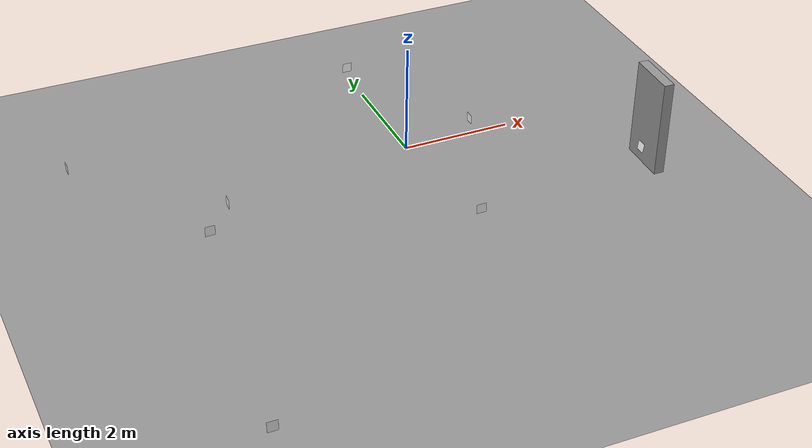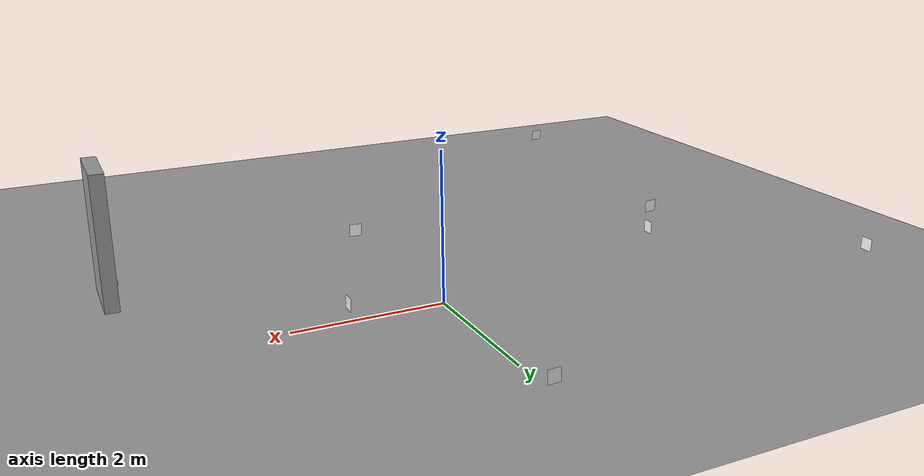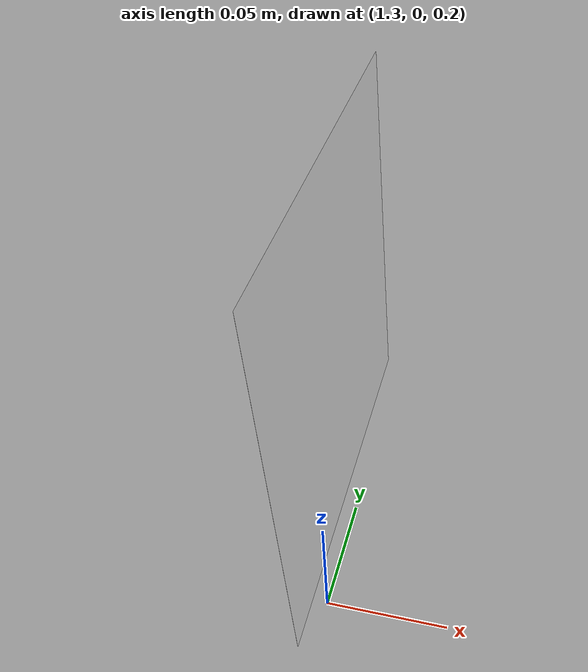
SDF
<sdf version="1.6">
 <world name="default">
  <light name="sun" type="directional">
   <pose>0 0 10 0 -0 0</pose>
   <diffuse>0.8 0.8 0.8 1</diffuse>
   <specular>0.2 0.2 0.2 1</specular>
   <attenuation>
    <range>1000</range>
    <constant>0.9</constant>
    <linear>0.01</linear>
    <quadratic>0.001</quadratic>
   </attenuation>
   <direction>0.5 0.1 -0.9</direction>
  </light>
  <scene><ambient>0.4 0.4 0.4 1</ambient><background>0.7 0.7 0.7 1</background><shadows>1</shadows></scene>
  <physics name="default_physics" default="0" type="ode">
   <max_step_size>0.01</max_step_size>
   <real_time_factor>1</real_time_factor>
   <real_time_update_rate>100</real_time_update_rate>
  </physics>
  <model name="ground_plane_0">
   <static>1</static>
   <link name="link">
    <collision name="collision">
     <geometry><plane><normal>0 0 1</normal><size>100 100</size></plane></geometry>
     <surface><friction><ode><mu>100</mu><mu2>50</mu2></ode></friction></surface>
    </collision>
    <visual name="visual">
     <cast_shadows>0</cast_shadows>
     <geometry><plane><normal>0 0 1</normal><size>100 100</size></plane></geometry>
     <material>
      <script><uri>file://media/materials/scripts/gazebo.material</uri><name>Gazebo/Grey</name></script>
     </material>
    </visual>
    <velocity_decay><linear>0</linear><angular>0</angular></velocity_decay>
   </link>
   <pose>0.497681 0 0 0 -0 0</pose>
  </model>
  <gravity>0 0 -9.8</gravity>
  <magnetic_field>6e-06 2.3e-05 -4.2e-05</magnetic_field>
  <atmosphere type="adiabatic"/>
  <spherical_coordinates>
   <surface_model>EARTH_WGS84</surface_model>
   <latitude_deg>0</latitude_deg>
   <longitude_deg>0</longitude_deg>
   <elevation>0</elevation>
   <heading_deg>0</heading_deg>
  </spherical_coordinates>
  <model name="aruco_visual_marker_0">
   <link name="marker">
    <visual name="visual">
     <geometry><box><size>0.1778 0.1778 1e-05</size></box></geometry>
     <material>
      <script>
       <uri>model://aruco_visual_marker_0/materials/scripts</uri>
       <uri>model://aruco_visual_marker_0/materials/textures</uri>
       <name>ArucoVisualMarker0/Marker</name>
      </script>
      <ambient>1 1 1 1</ambient>
      <diffuse>1 1 1 1</diffuse>
      <specular>0 0 0 1</specular>
      <emissive>1 1 1 0</emissive>
      <shader type="vertex"><normal_map>__default__</normal_map></shader>
     </material>
    </visual>
    <collision name="collision"><geometry><box><size>0.1778 0.1778 1e-05</size></box></geometry></collision>
   </link>
   <link name="marker_pad">
    <pose frame="marker">0 0 -1e-05 0 -0 0</pose>
    <visual name="visual">
     <geometry><box><size>0.1778 0.1778 1e-05</size></box></geometry>
     <material>
      <lighting>1</lighting>
      <script><uri>file://media/materials/scripts/gazebo.material</uri><name>Gazebo/White</name></script>
      <ambient>0.3 0.3 0.3 1</ambient>
      <diffuse>0.7 0.7 0.7 1</diffuse>
      <specular>0.01 0.01 0.01 1</specular>
      <emissive>1 1 1 0</emissive>
      <shader type="vertex"><normal_map>__default__</normal_map></shader>
     </material>
    </visual>
    <collision name="collision"><geometry><box><size>0.1778 0.1778 1e-05</size></box></geometry></collision>
   </link>
   <joint name="marker_JOINT_marker_pad" type="revolute">
    <parent>marker</parent>
    <child>marker_pad</child>
    <axis>
     <xyz>0 0 1</xyz>
     <limit><upper>0</upper><lower>0</lower></limit>
     <use_parent_model_frame>0</use_parent_model_frame>
     <dynamics><spring_reference>0</spring_reference><spring_stiffness>0</spring_stiffness></dynamics>
    </axis>
   </joint>
   <static>1</static>
   <pose>1.28765 0.072859 0.278322 3.14159 -1.52986 3.14159</pose>
  </model>
  <model name="aruco_visual_marker_1">
   <link name="marker">
    <visual name="visual">
     <geometry><box><size>0.1778 0.1778 1e-05</size></box></geometry>
     <material>
      <script>
       <uri>model://aruco_visual_marker_1/materials/scripts</uri>
       <uri>model://aruco_visual_marker_1/materials/textures</uri>
       <name>ArucoVisualMarker1/Marker</name>
      </script>
      <ambient>1 1 1 1</ambient>
      <diffuse>1 1 1 1</diffuse>
      <specular>0 0 0 1</specular>
      <emissive>1 1 1 0</emissive>
      <shader type="vertex"><normal_map>__default__</normal_map></shader>
     </material>
    </visual>
    <collision name="collision"><geometry><box><size>0.1778 0.1778 1e-05</size></box></geometry></collision>
   </link>
   <link name="marker_pad">
    <pose frame="marker">0 0 -1e-05 0 -0 0</pose>
    <visual name="visual">
     <geometry><box><size>0.1778 0.1778 1e-05</size></box></geometry>
     <material>
      <lighting>1</lighting>
      <script><uri>file://media/materials/scripts/gazebo.material</uri><name>Gazebo/White</name></script>
      <ambient>0.3 0.3 0.3 1</ambient>
      <diffuse>0.7 0.7 0.7 1</diffuse>
      <specular>0.01 0.01 0.01 1</specular>
      <emissive>1 1 1 0</emissive>
      <shader type="vertex"><normal_map>__default__</normal_map></shader>
     </material>
    </visual>
    <collision name="collision"><geometry><box><size>0.1778 0.1778 1e-05</size></box></geometry></collision>
   </link>
   <joint name="marker_JOINT_marker_pad" type="revolute">
    <parent>marker</parent>
    <child>marker_pad</child>
    <axis>
     <xyz>0 0 1</xyz>
     <limit><upper>0</upper><lower>0</lower></limit>
     <use_parent_model_frame>0</use_parent_model_frame>
     <dynamics><spring_reference>0</spring_reference><spring_stiffness>0</spring_stiffness></dynamics>
    </axis>
   </joint>
   <static>1</static>
   <pose>-0.010006 2.74386 0.206265 1.67097 -1.54756 -0.042511</pose>
  </model>
  <model name="aruco_visual_marker_2">
   <link name="marker">
    <visual name="visual">
     <geometry><box><size>0.1778 0.1778 1e-05</size></box></geometry>
     <material>
      <script>
       <uri>model://aruco_visual_marker_2/materials/scripts</uri>
       <uri>model://aruco_visual_marker_2/materials/textures</uri>
       <name>ArucoVisualMarker2/Marker</name>
      </script>
      <ambient>1 1 1 1</ambient>
      <diffuse>1 1 1 1</diffuse>
      <specular>0 0 0 1</specular>
      <emissive>1 1 1 0</emissive>
      <shader type="vertex"><normal_map>__default__</normal_map></shader>
     </material>
    </visual>
    <collision name="collision"><geometry><box><size>0.1778 0.1778 1e-05</size></box></geometry></collision>
   </link>
   <link name="marker_pad">
    <pose frame="marker">0 0 -1e-05 0 -0 0</pose>
    <visual name="visual">
     <geometry><box><size>0.1778 0.1778 1e-05</size></box></geometry>
     <material>
      <lighting>1</lighting>
      <script><uri>file://media/materials/scripts/gazebo.material</uri><name>Gazebo/White</name></script>
      <ambient>0.3 0.3 0.3 1</ambient>
      <diffuse>0.7 0.7 0.7 1</diffuse>
      <specular>0.01 0.01 0.01 1</specular>
      <emissive>1 1 1 0</emissive>
      <shader type="vertex"><normal_map>__default__</normal_map></shader>
     </material>
    </visual>
    <collision name="collision"><geometry><box><size>0.1778 0.1778 1e-05</size></box></geometry></collision>
   </link>
   <joint name="marker_JOINT_marker_pad" type="revolute">
    <parent>marker</parent>
    <child>marker_pad</child>
    <axis>
     <xyz>0 0 1</xyz>
     <limit><upper>0</upper><lower>0</lower></limit>
     <use_parent_model_frame>0</use_parent_model_frame>
     <dynamics><spring_reference>0</spring_reference><spring_stiffness>0</spring_stiffness></dynamics>
    </axis>
   </joint>
   <static>1</static>
   <pose>0.237944 -2.53472 0.247689 1.56817 -1.53942 -3.1407</pose>
  </model>
  <model name="aruco_visual_marker_3">
   <link name="marker">
    <visual name="visual">
     <geometry><box><size>0.1778 0.1778 1e-05</size></box></geometry>
     <material>
      <script>
       <uri>model://aruco_visual_marker_3/materials/scripts</uri>
       <uri>model://aruco_visual_marker_3/materials/textures</uri>
       <name>ArucoVisualMarker3/Marker</name>
      </script>
      <ambient>1 1 1 1</ambient>
      <diffuse>1 1 1 1</diffuse>
      <specular>0 0 0 1</specular>
      <emissive>1 1 1 0</emissive>
      <shader type="vertex"><normal_map>__default__</normal_map></shader>
     </material>
    </visual>
    <collision name="collision"><geometry><box><size>0.1778 0.1778 1e-05</size></box></geometry></collision>
   </link>
   <link name="marker_pad">
    <pose frame="marker">0 0 -1e-05 0 -0 0</pose>
    <visual name="visual">
     <geometry><box><size>0.1778 0.1778 1e-05</size></box></geometry>
     <material>
      <lighting>1</lighting>
      <script><uri>file://media/materials/scripts/gazebo.material</uri><name>Gazebo/White</name></script>
      <ambient>0.3 0.3 0.3 1</ambient>
      <diffuse>0.7 0.7 0.7 1</diffuse>
      <specular>0.01 0.01 0.01 1</specular>
      <emissive>1 1 1 0</emissive>
      <shader type="vertex"><normal_map>__default__</normal_map></shader>
     </material>
    </visual>
    <collision name="collision"><geometry><box><size>0.1778 0.1778 1e-05</size></box></geometry></collision>
   </link>
   <joint name="marker_JOINT_marker_pad" type="revolute">
    <parent>marker</parent>
    <child>marker_pad</child>
    <axis>
     <xyz>0 0 1</xyz>
     <limit><upper>0</upper><lower>0</lower></limit>
     <use_parent_model_frame>0</use_parent_model_frame>
     <dynamics><spring_reference>0</spring_reference><spring_stiffness>0</spring_stiffness></dynamics>
    </axis>
   </joint>
   <static>1</static>
   <pose>-3.61678 -0.708729 0.251791 0.078615 -1.56846 3.02331</pose>
  </model>
  <model name="aruco_visual_marker_5">
   <link name="marker">
    <visual name="visual">
     <geometry><box><size>0.1778 0.1778 1e-05</size></box></geometry>
     <material>
      <script>
       <uri>model://aruco_visual_marker_5/materials/scripts</uri>
       <uri>model://aruco_visual_marker_5/materials/textures</uri>
       <name>ArucoVisualMarker5/Marker</name>
      </script>
      <ambient>1 1 1 1</ambient>
      <diffuse>1 1 1 1</diffuse>
      <specular>0 0 0 1</specular>
      <emissive>1 1 1 0</emissive>
      <shader type="vertex"><normal_map>__default__</normal_map></shader>
     </material>
    </visual>
    <collision name="collision"><geometry><box><size>0.1778 0.1778 1e-05</size></box></geometry></collision>
   </link>
   <link name="marker_pad">
    <pose frame="marker">0 0 -1e-05 0 -0 0</pose>
    <visual name="visual">
     <geometry><box><size>0.1778 0.1778 1e-05</size></box></geometry>
     <material>
      <lighting>1</lighting>
      <script><uri>file://media/materials/scripts/gazebo.material</uri><name>Gazebo/White</name></script>
      <ambient>0.3 0.3 0.3 1</ambient>
      <diffuse>0.7 0.7 0.7 1</diffuse>
      <specular>0.01 0.01 0.01 1</specular>
      <emissive>1 1 1 0</emissive>
      <shader type="vertex"><normal_map>__default__</normal_map></shader>
     </material>
    </visual>
    <collision name="collision"><geometry><box><size>0.1778 0.1778 1e-05</size></box></geometry></collision>
   </link>
   <joint name="marker_JOINT_marker_pad" type="revolute">
    <parent>marker</parent>
    <child>marker_pad</child>
    <axis>
     <xyz>0 0 1</xyz>
     <limit><upper>0</upper><lower>0</lower></limit>
     <use_parent_model_frame>0</use_parent_model_frame>
     <dynamics><spring_reference>0</spring_reference><spring_stiffness>0</spring_stiffness></dynamics>
    </axis>
   </joint>
   <static>1</static>
   <pose>-4.16675 -1.4287 0.291247 -3.11073 -1.52026 1.5719</pose>
  </model>
  <model name="aruco_visual_marker_6">
   <link name="marker">
    <visual name="visual">
     <geometry><box><size>0.1778 0.1778 1e-05</size></box></geometry>
     <material>
      <script>
       <uri>model://aruco_visual_marker_6/materials/scripts</uri>
       <uri>model://aruco_visual_marker_6/materials/textures</uri>
       <name>ArucoVisualMarker6/Marker</name>
      </script>
      <ambient>1 1 1 1</ambient>
      <diffuse>1 1 1 1</diffuse>
      <specular>0 0 0 1</specular>
      <emissive>1 1 1 0</emissive>
      <shader type="vertex"><normal_map>__default__</normal_map></shader>
     </material>
    </visual>
    <collision name="collision"><geometry><box><size>0.1778 0.1778 1e-05</size></box></geometry></collision>
   </link>
   <link name="marker_pad">
    <pose frame="marker">0 0 -1e-05 0 -0 0</pose>
    <visual name="visual">
     <geometry><box><size>0.1778 0.1778 1e-05</size></box></geometry>
     <material>
      <lighting>1</lighting>
      <script><uri>file://media/materials/scripts/gazebo.material</uri><name>Gazebo/White</name></script>
      <ambient>0.3 0.3 0.3 1</ambient>
      <diffuse>0.7 0.7 0.7 1</diffuse>
      <specular>0.01 0.01 0.01 1</specular>
      <emissive>1 1 1 0</emissive>
      <shader type="vertex"><normal_map>__default__</normal_map></shader>
     </material>
    </visual>
    <collision name="collision"><geometry><box><size>0.1778 0.1778 1e-05</size></box></geometry></collision>
   </link>
   <joint name="marker_JOINT_marker_pad" type="revolute">
    <parent>marker</parent>
    <child>marker_pad</child>
    <axis>
     <xyz>0 0 1</xyz>
     <limit><upper>0</upper><lower>0</lower></limit>
     <use_parent_model_frame>0</use_parent_model_frame>
     <dynamics><spring_reference>0</spring_reference><spring_stiffness>0</spring_stiffness></dynamics>
    </axis>
   </joint>
   <static>1</static>
   <pose>-4.85402 -6.21626 0.300666 3.14159 -1.46545 1.57729</pose>
  </model>
  <model name="unit_box_0">
   <pose>3.75877 -2.03239 0.891027 -1e-06 2.7e-05 -0.027357</pose>
   <link name="link">
    <inertial>
     <mass>1</mass>
     <inertia>
      <ixx>0.166667</ixx>
      <ixy>0</ixy>
      <ixz>0</ixz>
      <iyy>0.166667</iyy>
      <iyz>0</iyz>
      <izz>0.166667</izz>
     </inertia>
    </inertial>
    <collision name="collision"><geometry><box><size>0.186255 0.88532 1.78381</size></box></geometry></collision>
    <visual name="visual">
     <geometry><box><size>0.186255 0.88532 1.78381</size></box></geometry>
     <material>
      <script><name>Gazebo/Grey</name><uri>file://media/materials/scripts/gazebo.material</uri></script>
     </material>
    </visual>
   </link>
  </model>
  <model name="aruco_visual_marker_7">
   <link name="marker">
    <visual name="visual">
     <geometry><box><size>0.1778 0.1778 1e-05</size></box></geometry>
     <material>
      <script>
       <uri>model://aruco_visual_marker_7/materials/scripts</uri>
       <uri>model://aruco_visual_marker_7/materials/textures</uri>
       <name>ArucoVisualMarker7/Marker</name>
      </script>
      <ambient>1 1 1 1</ambient>
      <diffuse>1 1 1 1</diffuse>
      <specular>0 0 0 1</specular>
      <emissive>1 1 1 0</emissive>
      <shader type="vertex"><normal_map>__default__</normal_map></shader>
     </material>
    </visual>
    <collision name="collision"><geometry><box><size>0.1778 0.1778 1e-05</size></box></geometry></collision>
   </link>
   <link name="marker_pad">
    <pose frame="marker">0 0 -1e-05 0 -0 0</pose>
    <visual name="visual">
     <geometry><box><size>0.1778 0.1778 1e-05</size></box></geometry>
     <material>
      <lighting>1</lighting>
      <script><uri>file://media/materials/scripts/gazebo.material</uri><name>Gazebo/White</name></script>
      <ambient>0.3 0.3 0.3 1</ambient>
      <diffuse>0.7 0.7 0.7 1</diffuse>
      <specular>0.01 0.01 0.01 1</specular>
      <emissive>1 1 1 0</emissive>
      <shader type="vertex"><normal_map>__default__</normal_map></shader>
     </material>
    </visual>
    <collision name="collision"><geometry><box><size>0.1778 0.1778 1e-05</size></box></geometry></collision>
   </link>
   <joint name="marker_JOINT_marker_pad" type="revolute">
    <parent>marker</parent>
    <child>marker_pad</child>
    <axis>
     <xyz>0 0 1</xyz>
     <limit><upper>0</upper><lower>0</lower></limit>
     <use_parent_model_frame>0</use_parent_model_frame>
     <dynamics><spring_reference>0</spring_reference><spring_stiffness>0</spring_stiffness></dynamics>
    </axis>
   </joint>
   <static>1</static>
   <pose>3.63792 -1.99964 0.296951 0 -1.4451 0</pose>
  </model>
  <model name="aruco_visual_marker_4_0">
   <link name="marker">
    <visual name="visual">
     <geometry><box><size>0.1778 0.1778 1e-05</size></box></geometry>
     <material>
      <script>
       <uri>model://aruco_visual_marker_4/materials/scripts</uri>
       <uri>model://aruco_visual_marker_4/materials/textures</uri>
       <name>ArucoVisualMarker4/Marker</name>
      </script>
      <ambient>1 1 1 1</ambient>
      <diffuse>1 1 1 1</diffuse>
      <specular>0 0 0 1</specular>
      <emissive>1 1 1 0</emissive>
      <shader type="vertex"><normal_map>__default__</normal_map></shader>
     </material>
    </visual>
    <collision name="collision"><geometry><box><size>0.1778 0.1778 1e-05</size></box></geometry></collision>
   </link>
   <link name="marker_pad">
    <pose frame="marker">0 0 -1e-05 0 -0 0</pose>
    <visual name="visual">
     <geometry><box><size>0.1778 0.1778 1e-05</size></box></geometry>
     <material>
      <lighting>1</lighting>
      <script><uri>file://media/materials/scripts/gazebo.material</uri><name>Gazebo/White</name></script>
      <ambient>0.3 0.3 0.3 1</ambient>
      <diffuse>0.7 0.7 0.7 1</diffuse>
      <specular>0.01 0.01 0.01 1</specular>
      <emissive>1 1 1 0</emissive>
      <shader type="vertex"><normal_map>__default__</normal_map></shader>
     </material>
    </visual>
    <collision name="collision"><geometry><box><size>0.1778 0.1778 1e-05</size></box></geometry></collision>
   </link>
   <joint name="marker_JOINT_marker_pad" type="revolute">
    <parent>marker</parent>
    <child>marker_pad</child>
    <axis>
     <xyz>0 0 1</xyz>
     <limit><upper>0</upper><lower>0</lower></limit>
     <use_parent_model_frame>0</use_parent_model_frame>
     <dynamics><spring_reference>0</spring_reference><spring_stiffness>0</spring_stiffness></dynamics>
    </axis>
   </joint>
   <static>1</static>
   <pose>-5.8507 1.35008 0.26539 0.329222 -1.53219 2.80468</pose>
  </model>
 </world>
</sdf>
